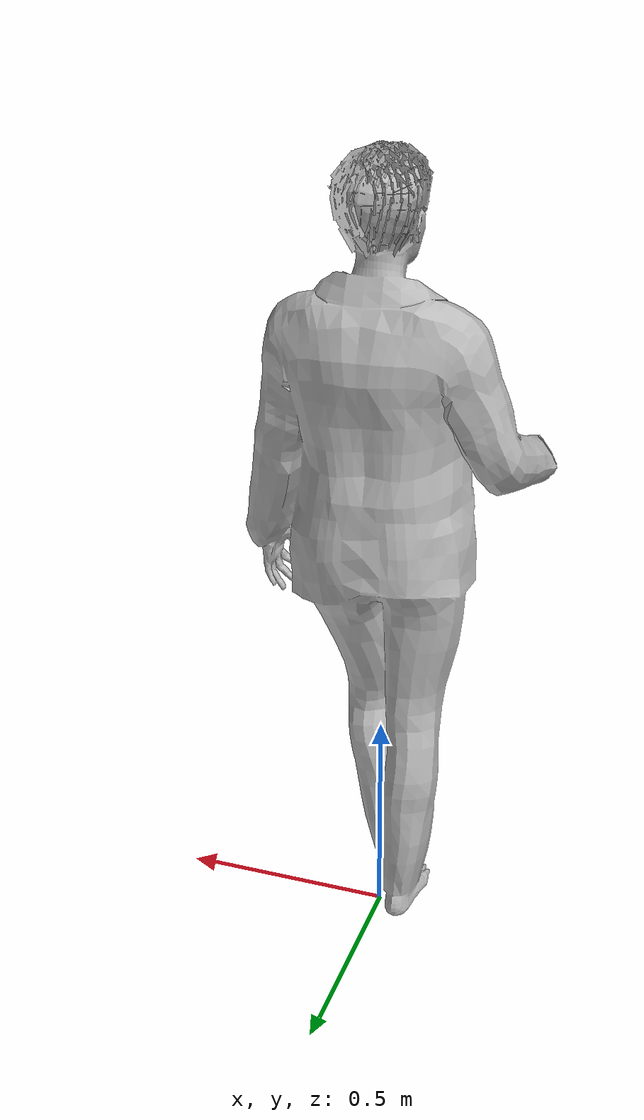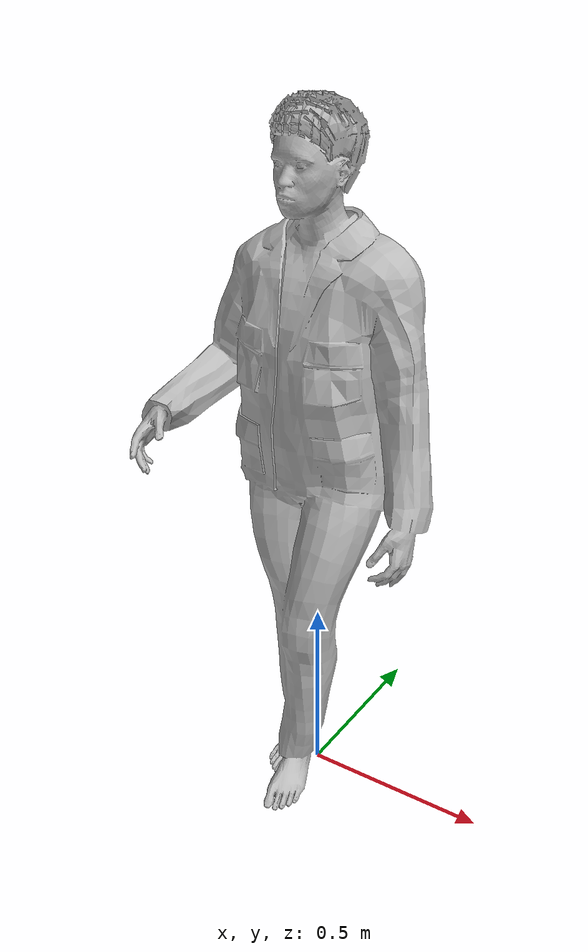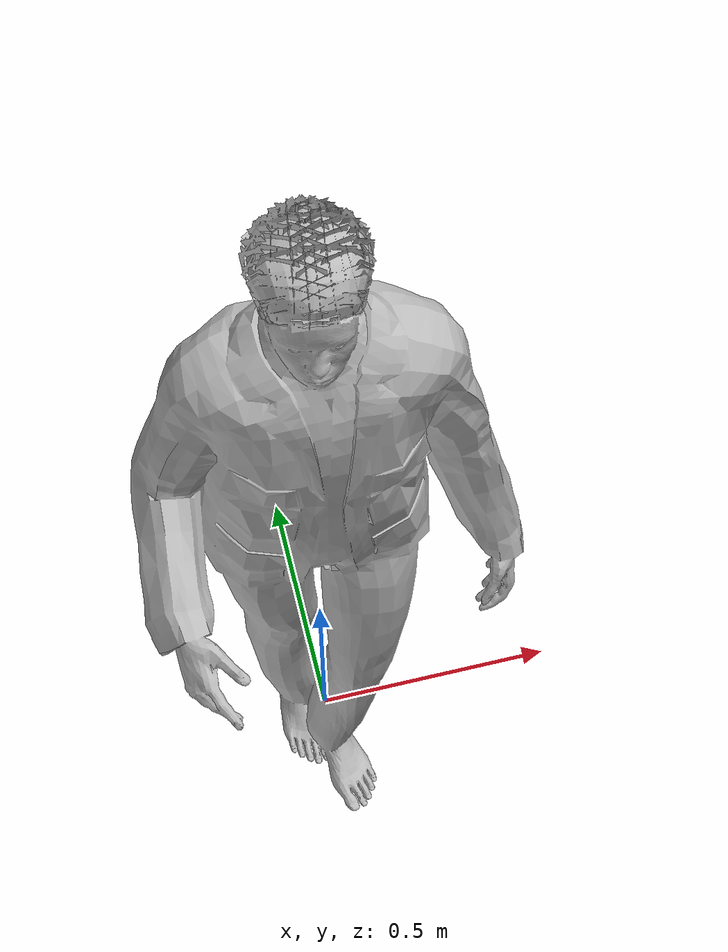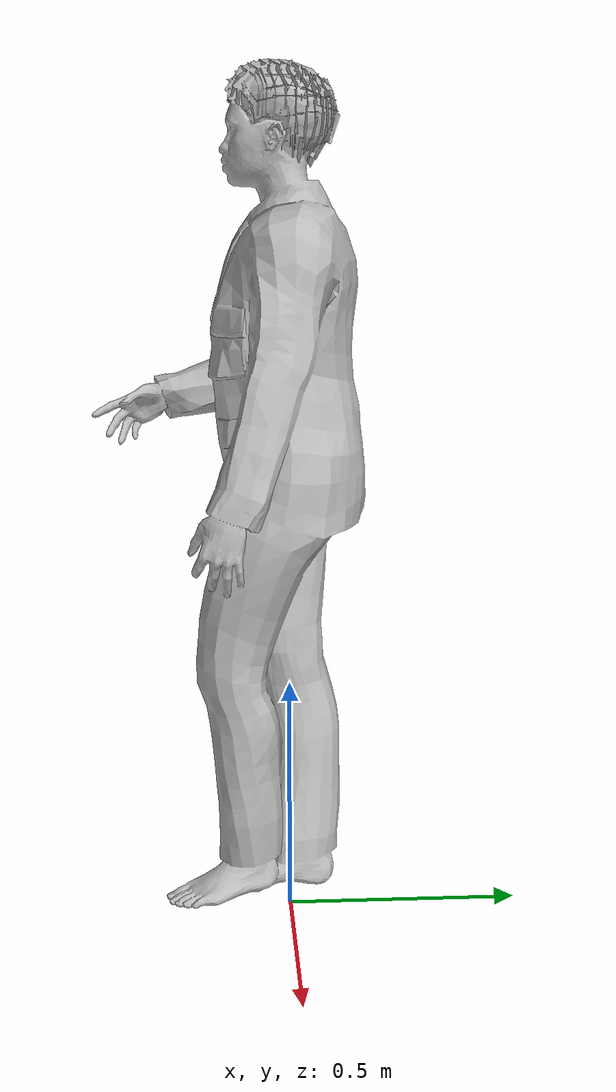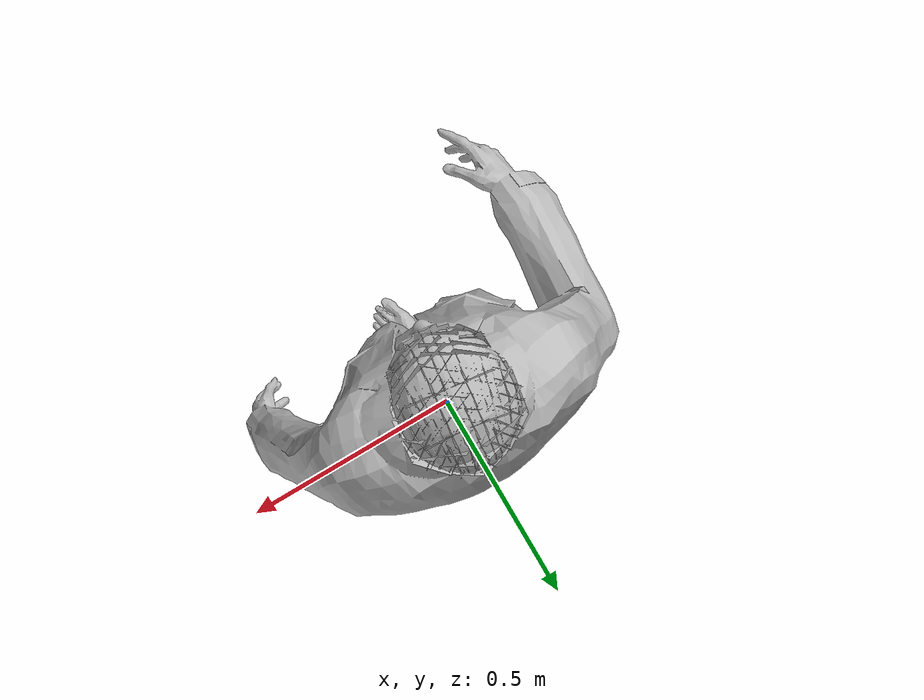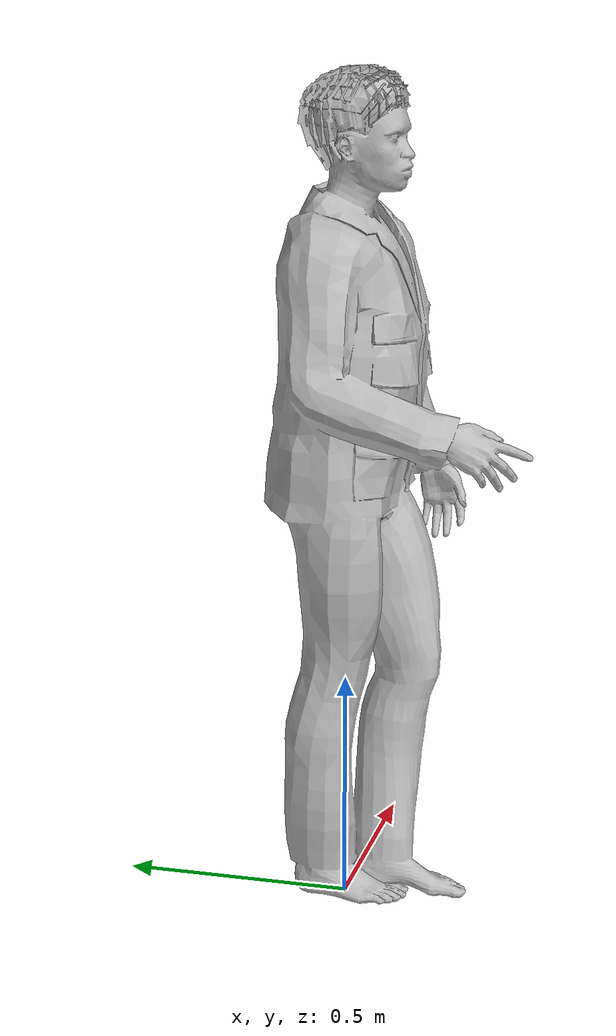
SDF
<?xml version="1.0" ?>
<sdf version="1.5">
  <model name="casual_male2">
    <static>true</static>
    <link name="link">
      <collision name="box">
        <pose>0 0 0.9 0 0 0</pose>
        <geometry>
          <box>
            <size>0.76 0.33 1.77</size>
          </box>
        </geometry>
      </collision>
      <visual name="visual">
        <pose>0 0 0.02 0.04 0 0</pose>
        <geometry>
          <mesh>
            <uri>model://casual_male2/meshes/casual_male2.dae</uri>
          </mesh>
        </geometry>
      </visual>
    </link>
  </model>
</sdf>
